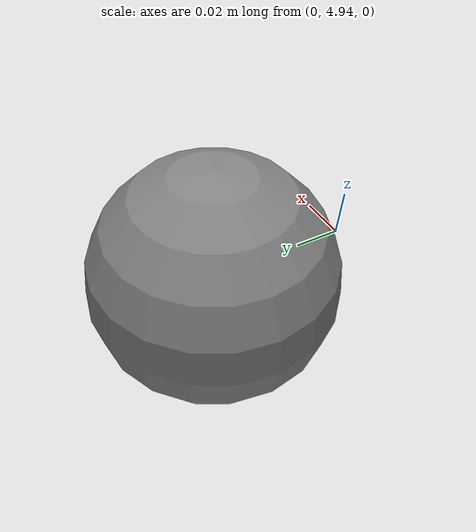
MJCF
<mujoco model="rne-free-fall">
  <compiler angle="radian"/>
  <option timestep="0.016666666" gravity="0 -9.81 0"/>
  <worldbody>
    <body name="rne_free_fall_body" pos="0 5 0">
      <freejoint name="rne_free_fall_joint"/>
      <geom name="rne_free_fall_sphere" type="sphere" size="0.05"/>
    </body>
  </worldbody>
</mujoco>
